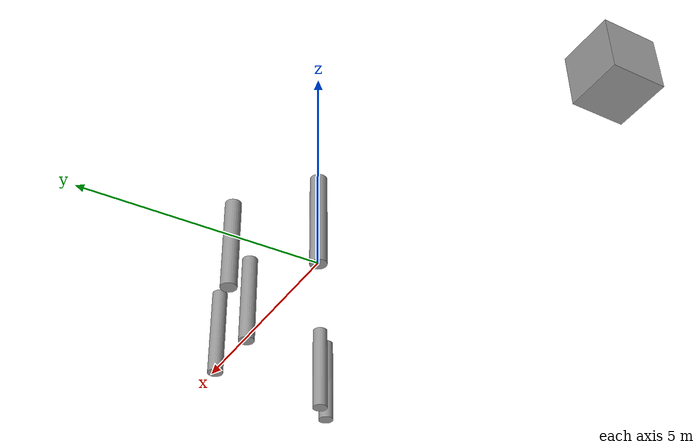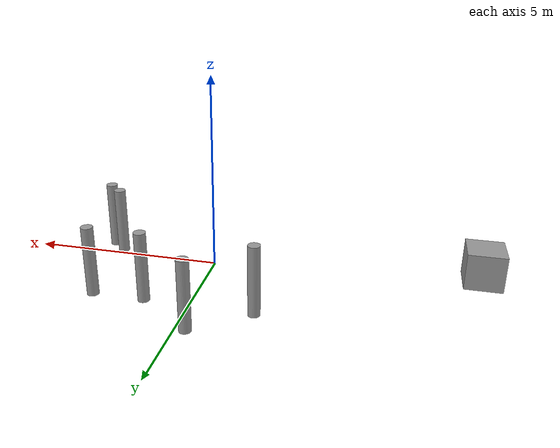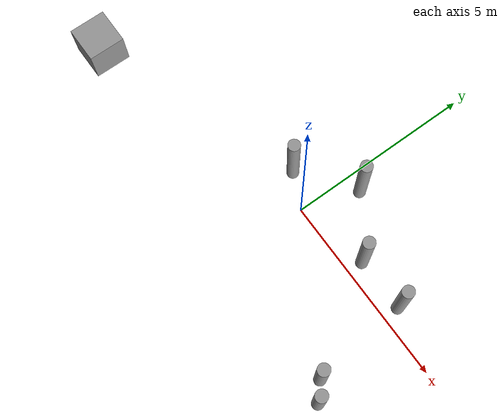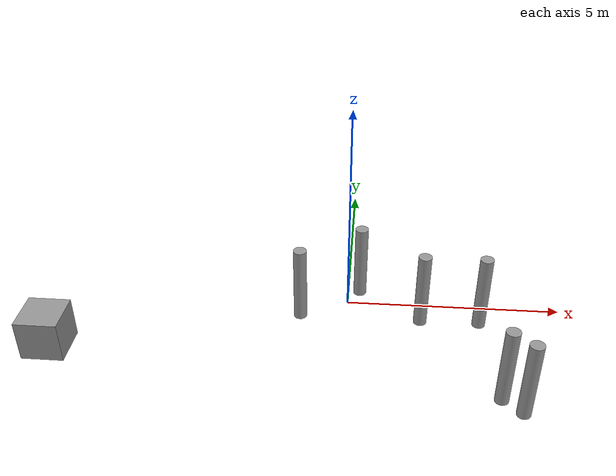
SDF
<?xml version='1.0'?>
<sdf version='1.7'>
  <model name='scenes'>
    <link name='link_1_clone'>
      <inertial>
        <mass>0.221836</mass>
        <inertia>
          <ixx>0.0749867</ixx>
          <ixy>0</ixy>
          <ixz>0</ixz>
          <iyy>0.0749867</iyy>
          <iyz>0</iyz>
          <izz>0.00308617</izz>
        </inertia>
        <pose>0 0 0 0 -0 0</pose>
      </inertial>
      <pose>3.30381 0.641468 -0 0 -0 0</pose>
      <visual name='visual'>
        <pose>0 0 0 0 -0 0</pose>
        <geometry>
          <cylinder>
            <radius>0.166805</radius>
            <length>1.9932</length>
          </cylinder>
        </geometry>
        <material>
          <lighting>1</lighting>
          <script>
            <uri>file://media/materials/scripts/gazebo.material</uri>
            <name>Gazebo/Grey</name>
          </script>
          <shader type='pixel'/>
        </material>
        <transparency>0</transparency>
        <cast_shadows>1</cast_shadows>
      </visual>
      <collision name='collision'>
        <laser_retro>0</laser_retro>
        <max_contacts>10</max_contacts>
        <pose>0 0 0 0 -0 0</pose>
        <geometry>
          <cylinder>
            <radius>0.166805</radius>
            <length>1.9932</length>
          </cylinder>
        </geometry>
        <surface>
          <friction>
            <ode>
              <mu>1</mu>
              <mu2>1</mu2>
              <fdir1>0 0 0</fdir1>
              <slip1>0</slip1>
              <slip2>0</slip2>
            </ode>
            <torsional>
              <coefficient>1</coefficient>
              <patch_radius>0</patch_radius>
              <surface_radius>0</surface_radius>
              <use_patch_radius>1</use_patch_radius>
              <ode>
                <slip>0</slip>
              </ode>
            </torsional>
          </friction>
          <bounce>
            <restitution_coefficient>0</restitution_coefficient>
            <threshold>1e+06</threshold>
          </bounce>
          <contact>
            <collide_without_contact>0</collide_without_contact>
            <collide_without_contact_bitmask>1</collide_without_contact_bitmask>
            <collide_bitmask>1</collide_bitmask>
            <ode>
              <soft_cfm>0</soft_cfm>
              <soft_erp>0.2</soft_erp>
              <kp>1e+13</kp>
              <kd>1</kd>
              <max_vel>0.01</max_vel>
              <min_depth>0</min_depth>
            </ode>
            <bullet>
              <split_impulse>1</split_impulse>
              <split_impulse_penetration_threshold>-0.01</split_impulse_penetration_threshold>
              <soft_cfm>0</soft_cfm>
              <soft_erp>0.2</soft_erp>
              <kp>1e+13</kp>
              <kd>1</kd>
            </bullet>
          </contact>
        </surface>
      </collision>
    </link>
    <link name='link_1_clone_0'>
      <inertial>
        <mass>0.221836</mass>
        <inertia>
          <ixx>0.0749867</ixx>
          <ixy>0</ixy>
          <ixz>0</ixz>
          <iyy>0.0749867</iyy>
          <iyz>0</iyz>
          <izz>0.00308617</izz>
        </inertia>
        <pose>0 0 0 0 -0 0</pose>
      </inertial>
      <pose>4.01746 -2.42929 -0 0 -0 0</pose>
      <visual name='visual'>
        <pose>0 0 0 0 -0 0</pose>
        <geometry>
          <cylinder>
            <radius>0.166805</radius>
            <length>1.9932</length>
          </cylinder>
        </geometry>
        <material>
          <lighting>1</lighting>
          <script>
            <uri>file://media/materials/scripts/gazebo.material</uri>
            <name>Gazebo/Grey</name>
          </script>
          <shader type='pixel'/>
        </material>
        <transparency>0</transparency>
        <cast_shadows>1</cast_shadows>
      </visual>
      <collision name='collision'>
        <laser_retro>0</laser_retro>
        <max_contacts>10</max_contacts>
        <pose>0 0 0 0 -0 0</pose>
        <geometry>
          <cylinder>
            <radius>0.166805</radius>
            <length>1.9932</length>
          </cylinder>
        </geometry>
        <surface>
          <friction>
            <ode>
              <mu>1</mu>
              <mu2>1</mu2>
              <fdir1>0 0 0</fdir1>
              <slip1>0</slip1>
              <slip2>0</slip2>
            </ode>
            <torsional>
              <coefficient>1</coefficient>
              <patch_radius>0</patch_radius>
              <surface_radius>0</surface_radius>
              <use_patch_radius>1</use_patch_radius>
              <ode>
                <slip>0</slip>
              </ode>
            </torsional>
          </friction>
          <bounce>
            <restitution_coefficient>0</restitution_coefficient>
            <threshold>1e+06</threshold>
          </bounce>
          <contact>
            <collide_without_contact>0</collide_without_contact>
            <collide_without_contact_bitmask>1</collide_without_contact_bitmask>
            <collide_bitmask>1</collide_bitmask>
            <ode>
              <soft_cfm>0</soft_cfm>
              <soft_erp>0.2</soft_erp>
              <kp>1e+13</kp>
              <kd>1</kd>
              <max_vel>0.01</max_vel>
              <min_depth>0</min_depth>
            </ode>
            <bullet>
              <split_impulse>1</split_impulse>
              <split_impulse_penetration_threshold>-0.01</split_impulse_penetration_threshold>
              <soft_cfm>0</soft_cfm>
              <soft_erp>0.2</soft_erp>
              <kp>1e+13</kp>
              <kd>1</kd>
            </bullet>
          </contact>
        </surface>
      </collision>
    </link>
    <link name='link_1_clone_1'>
      <inertial>
        <mass>0.221836</mass>
        <inertia>
          <ixx>0.0749867</ixx>
          <ixy>0</ixy>
          <ixz>0</ixz>
          <iyy>0.0749867</iyy>
          <iyz>0</iyz>
          <izz>0.00308617</izz>
        </inertia>
        <pose>0 0 0 0 -0 0</pose>
      </inertial>
      <pose>1.82757 0.631099 -0 0 -0 0</pose>
      <visual name='visual'>
        <pose>0 0 0 0 -0 0</pose>
        <geometry>
          <cylinder>
            <radius>0.166805</radius>
            <length>1.9932</length>
          </cylinder>
        </geometry>
        <material>
          <lighting>1</lighting>
          <script>
            <uri>file://media/materials/scripts/gazebo.material</uri>
            <name>Gazebo/Grey</name>
          </script>
          <shader type='pixel'/>
        </material>
        <transparency>0</transparency>
        <cast_shadows>1</cast_shadows>
      </visual>
      <collision name='collision'>
        <laser_retro>0</laser_retro>
        <max_contacts>10</max_contacts>
        <pose>0 0 0 0 -0 0</pose>
        <geometry>
          <cylinder>
            <radius>0.166805</radius>
            <length>1.9932</length>
          </cylinder>
        </geometry>
        <surface>
          <friction>
            <ode>
              <mu>1</mu>
              <mu2>1</mu2>
              <fdir1>0 0 0</fdir1>
              <slip1>0</slip1>
              <slip2>0</slip2>
            </ode>
            <torsional>
              <coefficient>1</coefficient>
              <patch_radius>0</patch_radius>
              <surface_radius>0</surface_radius>
              <use_patch_radius>1</use_patch_radius>
              <ode>
                <slip>0</slip>
              </ode>
            </torsional>
          </friction>
          <bounce>
            <restitution_coefficient>0</restitution_coefficient>
            <threshold>1e+06</threshold>
          </bounce>
          <contact>
            <collide_without_contact>0</collide_without_contact>
            <collide_without_contact_bitmask>1</collide_without_contact_bitmask>
            <collide_bitmask>1</collide_bitmask>
            <ode>
              <soft_cfm>0</soft_cfm>
              <soft_erp>0.2</soft_erp>
              <kp>1e+13</kp>
              <kd>1</kd>
              <max_vel>0.01</max_vel>
              <min_depth>0</min_depth>
            </ode>
            <bullet>
              <split_impulse>1</split_impulse>
              <split_impulse_penetration_threshold>-0.01</split_impulse_penetration_threshold>
              <soft_cfm>0</soft_cfm>
              <soft_erp>0.2</soft_erp>
              <kp>1e+13</kp>
              <kd>1</kd>
            </bullet>
          </contact>
        </surface>
      </collision>
    </link>
    <link name='link_1_clone_2'>
      <inertial>
        <mass>0.221836</mass>
        <inertia>
          <ixx>0.0749867</ixx>
          <ixy>0</ixy>
          <ixz>0</ixz>
          <iyy>0.0749867</iyy>
          <iyz>0</iyz>
          <izz>0.00308617</izz>
        </inertia>
        <pose>0 0 0 0 -0 0</pose>
      </inertial>
      <pose>-1.21935 0.660626 0 0 -0 0</pose>
      <visual name='visual'>
        <pose>0 0 0 0 -0 0</pose>
        <geometry>
          <cylinder>
            <radius>0.166805</radius>
            <length>1.9932</length>
          </cylinder>
        </geometry>
        <material>
          <lighting>1</lighting>
          <script>
            <uri>file://media/materials/scripts/gazebo.material</uri>
            <name>Gazebo/Grey</name>
          </script>
          <shader type='pixel'/>
        </material>
        <transparency>0</transparency>
        <cast_shadows>1</cast_shadows>
      </visual>
      <collision name='collision'>
        <laser_retro>0</laser_retro>
        <max_contacts>10</max_contacts>
        <pose>0 0 0 0 -0 0</pose>
        <geometry>
          <cylinder>
            <radius>0.166805</radius>
            <length>1.9932</length>
          </cylinder>
        </geometry>
        <surface>
          <friction>
            <ode>
              <mu>1</mu>
              <mu2>1</mu2>
              <fdir1>0 0 0</fdir1>
              <slip1>0</slip1>
              <slip2>0</slip2>
            </ode>
            <torsional>
              <coefficient>1</coefficient>
              <patch_radius>0</patch_radius>
              <surface_radius>0</surface_radius>
              <use_patch_radius>1</use_patch_radius>
              <ode>
                <slip>0</slip>
              </ode>
            </torsional>
          </friction>
          <bounce>
            <restitution_coefficient>0</restitution_coefficient>
            <threshold>1e+06</threshold>
          </bounce>
          <contact>
            <collide_without_contact>0</collide_without_contact>
            <collide_without_contact_bitmask>1</collide_without_contact_bitmask>
            <collide_bitmask>1</collide_bitmask>
            <ode>
              <soft_cfm>0</soft_cfm>
              <soft_erp>0.2</soft_erp>
              <kp>1e+13</kp>
              <kd>1</kd>
              <max_vel>0.01</max_vel>
              <min_depth>0</min_depth>
            </ode>
            <bullet>
              <split_impulse>1</split_impulse>
              <split_impulse_penetration_threshold>-0.01</split_impulse_penetration_threshold>
              <soft_cfm>0</soft_cfm>
              <soft_erp>0.2</soft_erp>
              <kp>1e+13</kp>
              <kd>1</kd>
            </bullet>
          </contact>
        </surface>
      </collision>
    </link>
    <link name='link_1_clone_3'>
      <inertial>
        <mass>0.221836</mass>
        <inertia>
          <ixx>0.0749867</ixx>
          <ixy>0</ixy>
          <ixz>0</ixz>
          <iyy>0.0749867</iyy>
          <iyz>0</iyz>
          <izz>0.00308617</izz>
        </inertia>
        <pose>0 0 0 0 -0 0</pose>
      </inertial>
      <pose>0.266602 1.76711 0 0 -0 0</pose>
      <visual name='visual'>
        <pose>0 0 0 0 -0 0</pose>
        <geometry>
          <cylinder>
            <radius>0.166805</radius>
            <length>1.9932</length>
          </cylinder>
        </geometry>
        <material>
          <lighting>1</lighting>
          <script>
            <uri>file://media/materials/scripts/gazebo.material</uri>
            <name>Gazebo/Grey</name>
          </script>
          <shader type='pixel'/>
        </material>
        <transparency>0</transparency>
        <cast_shadows>1</cast_shadows>
      </visual>
      <collision name='collision'>
        <laser_retro>0</laser_retro>
        <max_contacts>10</max_contacts>
        <pose>0 0 0 0 -0 0</pose>
        <geometry>
          <cylinder>
            <radius>0.166805</radius>
            <length>1.9932</length>
          </cylinder>
        </geometry>
        <surface>
          <friction>
            <ode>
              <mu>1</mu>
              <mu2>1</mu2>
              <fdir1>0 0 0</fdir1>
              <slip1>0</slip1>
              <slip2>0</slip2>
            </ode>
            <torsional>
              <coefficient>1</coefficient>
              <patch_radius>0</patch_radius>
              <surface_radius>0</surface_radius>
              <use_patch_radius>1</use_patch_radius>
              <ode>
                <slip>0</slip>
              </ode>
            </torsional>
          </friction>
          <bounce>
            <restitution_coefficient>0</restitution_coefficient>
            <threshold>1e+06</threshold>
          </bounce>
          <contact>
            <collide_without_contact>0</collide_without_contact>
            <collide_without_contact_bitmask>1</collide_without_contact_bitmask>
            <collide_bitmask>1</collide_bitmask>
            <ode>
              <soft_cfm>0</soft_cfm>
              <soft_erp>0.2</soft_erp>
              <kp>1e+13</kp>
              <kd>1</kd>
              <max_vel>0.01</max_vel>
              <min_depth>0</min_depth>
            </ode>
            <bullet>
              <split_impulse>1</split_impulse>
              <split_impulse_penetration_threshold>-0.01</split_impulse_penetration_threshold>
              <soft_cfm>0</soft_cfm>
              <soft_erp>0.2</soft_erp>
              <kp>1e+13</kp>
              <kd>1</kd>
            </bullet>
          </contact>
        </surface>
      </collision>
    </link>
    <link name='link_1_clone_clone_clone'>
      <inertial>
        <mass>0.221836</mass>
        <inertia>
          <ixx>0.0749867</ixx>
          <ixy>0</ixy>
          <ixz>0</ixz>
          <iyy>0.0749867</iyy>
          <iyz>0</iyz>
          <izz>0.00308617</izz>
        </inertia>
        <pose>0 0 0 0 -0 0</pose>
      </inertial>
      <pose>3.58147 -2.03671 -0 0 -0 0</pose>
      <visual name='visual'>
        <pose>0 0 0 0 -0 0</pose>
        <geometry>
          <cylinder>
            <radius>0.166805</radius>
            <length>1.9932</length>
          </cylinder>
        </geometry>
        <material>
          <lighting>1</lighting>
          <script>
            <uri>file://media/materials/scripts/gazebo.material</uri>
            <name>Gazebo/Grey</name>
          </script>
          <shader type='pixel'/>
        </material>
        <transparency>0</transparency>
        <cast_shadows>1</cast_shadows>
      </visual>
      <collision name='collision'>
        <laser_retro>0</laser_retro>
        <max_contacts>10</max_contacts>
        <pose>0 0 0 0 -0 0</pose>
        <geometry>
          <cylinder>
            <radius>0.166805</radius>
            <length>1.9932</length>
          </cylinder>
        </geometry>
        <surface>
          <friction>
            <ode>
              <mu>1</mu>
              <mu2>1</mu2>
              <fdir1>0 0 0</fdir1>
              <slip1>0</slip1>
              <slip2>0</slip2>
            </ode>
            <torsional>
              <coefficient>1</coefficient>
              <patch_radius>0</patch_radius>
              <surface_radius>0</surface_radius>
              <use_patch_radius>1</use_patch_radius>
              <ode>
                <slip>0</slip>
              </ode>
            </torsional>
          </friction>
          <bounce>
            <restitution_coefficient>0</restitution_coefficient>
            <threshold>1e+06</threshold>
          </bounce>
          <contact>
            <collide_without_contact>0</collide_without_contact>
            <collide_without_contact_bitmask>1</collide_without_contact_bitmask>
            <collide_bitmask>1</collide_bitmask>
            <ode>
              <soft_cfm>0</soft_cfm>
              <soft_erp>0.2</soft_erp>
              <kp>1e+13</kp>
              <kd>1</kd>
              <max_vel>0.01</max_vel>
              <min_depth>0</min_depth>
            </ode>
            <bullet>
              <split_impulse>1</split_impulse>
              <split_impulse_penetration_threshold>-0.01</split_impulse_penetration_threshold>
              <soft_cfm>0</soft_cfm>
              <soft_erp>0.2</soft_erp>
              <kp>1e+13</kp>
              <kd>1</kd>
            </bullet>
          </contact>
        </surface>
      </collision>
    </link>
    <link name='link_2_clone_clone'>
      <inertial>
        <mass>1</mass>
        <inertia>
          <ixx>0.166667</ixx>
          <ixy>0</ixy>
          <ixz>0</ixz>
          <iyy>0.166667</iyy>
          <iyz>0</iyz>
          <izz>0.166667</izz>
        </inertia>
      </inertial>
      <pose>-6.93177 -1.57466 0 0 -0 0</pose>
      <visual name='visual'>
        <pose>0 0 0 0 -0 0</pose>
        <geometry>
          <box>
            <size>1 1 1</size>
          </box>
        </geometry>
        <material>
          <lighting>1</lighting>
          <script>
            <uri>file://media/materials/scripts/gazebo.material</uri>
            <name>Gazebo/Grey</name>
          </script>
          <shader type='pixel'/>
        </material>
        <transparency>0</transparency>
        <cast_shadows>1</cast_shadows>
      </visual>
      <collision name='collision'>
        <laser_retro>0</laser_retro>
        <max_contacts>10</max_contacts>
        <pose>0 0 0 0 -0 0</pose>
        <geometry>
          <box>
            <size>1 1 1</size>
          </box>
        </geometry>
        <surface>
          <friction>
            <ode>
              <mu>1</mu>
              <mu2>1</mu2>
              <fdir1>0 0 0</fdir1>
              <slip1>0</slip1>
              <slip2>0</slip2>
            </ode>
            <torsional>
              <coefficient>1</coefficient>
              <patch_radius>0</patch_radius>
              <surface_radius>0</surface_radius>
              <use_patch_radius>1</use_patch_radius>
              <ode>
                <slip>0</slip>
              </ode>
            </torsional>
          </friction>
          <bounce>
            <restitution_coefficient>0</restitution_coefficient>
            <threshold>1e+06</threshold>
          </bounce>
          <contact>
            <collide_without_contact>0</collide_without_contact>
            <collide_without_contact_bitmask>1</collide_without_contact_bitmask>
            <collide_bitmask>1</collide_bitmask>
            <ode>
              <soft_cfm>0</soft_cfm>
              <soft_erp>0.2</soft_erp>
              <kp>1e+13</kp>
              <kd>1</kd>
              <max_vel>0.01</max_vel>
              <min_depth>0</min_depth>
            </ode>
            <bullet>
              <split_impulse>1</split_impulse>
              <split_impulse_penetration_threshold>-0.01</split_impulse_penetration_threshold>
              <soft_cfm>0</soft_cfm>
              <soft_erp>0.2</soft_erp>
              <kp>1e+13</kp>
              <kd>1</kd>
            </bullet>
          </contact>
        </surface>
      </collision>
    </link>
    <static>0</static>
    <allow_auto_disable>1</allow_auto_disable>
  </model>
</sdf>
